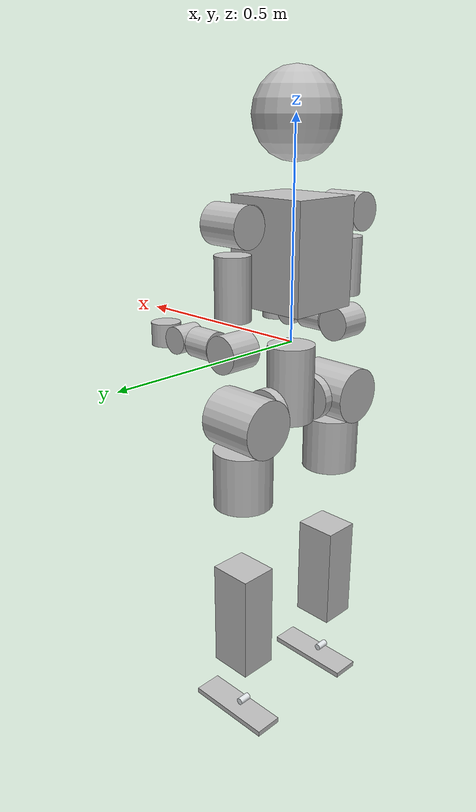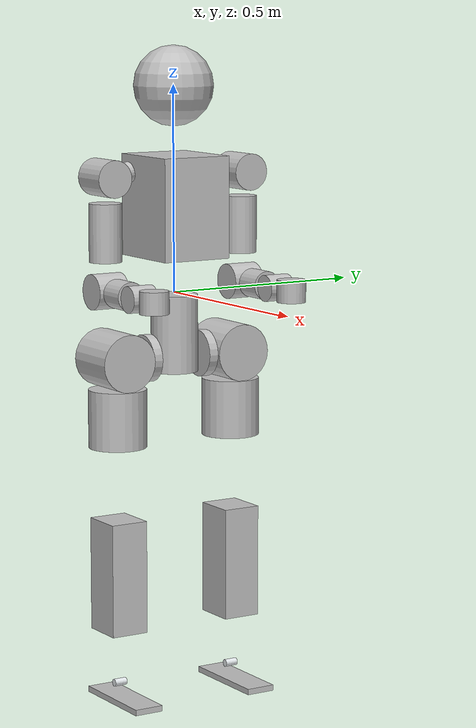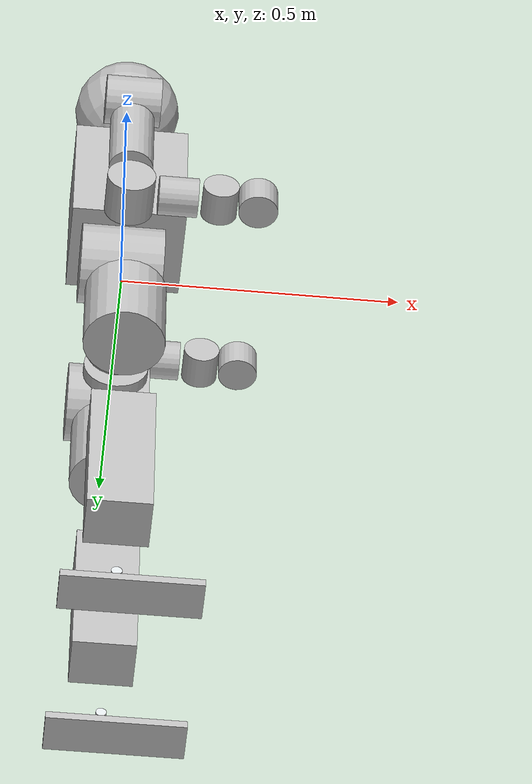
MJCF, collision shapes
<mujoco model="tsts2">
  <compiler angle="radian" meshdir="../meshes/"/>

  <asset>
    <mesh name="pelvis" file="pelvis.STL"/>
    <mesh name="left_hip_pitch_link" file="left_hip_pitch_link.STL"/>
    <mesh name="left_hip_roll_link" file="left_hip_roll_link.STL"/>
    <mesh name="left_hip_yaw_link" file="left_hip_yaw_link.STL"/>
    <mesh name="left_knee_link" file="left_knee_link.STL"/>
    <mesh name="left_ankle_pitch_link" file="left_ankle_pitch_link.STL"/>
    <mesh name="left_ankle_roll_link" file="left_ankle_roll_link.STL"/>
    <mesh name="right_hip_pitch_link" file="right_hip_pitch_link.STL"/>
    <mesh name="right_hip_roll_link" file="right_hip_roll_link.STL"/>
    <mesh name="right_hip_yaw_link" file="right_hip_yaw_link.STL"/>
    <mesh name="right_knee_link" file="right_knee_link.STL"/>
    <mesh name="right_ankle_pitch_link" file="right_ankle_pitch_link.STL"/>
    <mesh name="right_ankle_roll_link" file="right_ankle_roll_link.STL"/>
    <mesh name="torso_link" file="torso_link.STL"/>
    <mesh name="head_link" file="head_link.STL"/>
    <mesh name="left_shoulder_pitch_link" file="left_shoulder_pitch_link.STL"/>
    <mesh name="left_shoulder_roll_link" file="left_shoulder_roll_link.STL"/>
    <mesh name="left_shoulder_yaw_link" file="left_shoulder_yaw_link.STL"/>
    <mesh name="left_elbow_link" file="left_elbow_link.STL"/>
    <mesh name="left_wrist_yaw_link" file="left_wrist_yaw_link.STL"/>
    <mesh name="left_wrist_pitch_link" file="left_wrist_pitch_link.STL"/>
    <mesh name="left_wrist_roll_link" file="left_wrist_roll_link.STL"/>
    <mesh name="right_shoulder_pitch_link" file="right_shoulder_pitch_link.STL"/>
    <mesh name="right_shoulder_roll_link" file="right_shoulder_roll_link.STL"/>
    <mesh name="right_shoulder_yaw_link" file="right_shoulder_yaw_link.STL"/>
    <mesh name="right_elbow_link" file="right_elbow_link.STL"/>
    <mesh name="right_wrist_yaw_link" file="right_wrist_yaw_link.STL"/>
    <mesh name="right_wrist_pitch_link" file="right_wrist_pitch_link.STL"/>
    <mesh name="right_wrist_roll_link" file="right_wrist_roll_link.STL"/>
  </asset>

  <worldbody>
    <geom type="mesh" contype="0" conaffinity="0" group="1" density="0" rgba="0.752941 0.752941 0.752941 1" mesh="pelvis"/>
    <geom size="0.0572 0.09415" pos="0 0 -0.1" type="cylinder" rgba="0.752941 0.752941 0.752941 1"/>
    <body name="left_hip_pitch_link" pos="0 0.068 -0.156">
      <inertial pos="-0.0201683 0.0822161 0" quat="0.704101 0.704101 0.0651255 0.0651255" mass="2.42773" diaginertia="0.00623422 0.00516186 0.00352913"/>
      <joint name="left_hip_pitch_joint" pos="0 0 0" axis="0 1 0" range="-2.617 2.617" actuatorfrcrange="-300 300"/>
      <geom type="mesh" contype="0" conaffinity="0" group="1" density="0" rgba="0.752941 0.752941 0.752941 1" mesh="left_hip_pitch_link"/>
      <geom size="0.0575 0.0117" pos="0 0.01 0" quat="0.707388 0.706825 0 0" type="cylinder" rgba="0.752941 0.752941 0.752941 1"/>
      <body name="left_hip_roll_link" pos="0 0.092 0">
        <inertial pos="-0.00231162 -0.00036364 -0.081422" quat="0.986446 -0.0128273 0.163575 0.00198067" mass="3.15516" diaginertia="0.0127869 0.0114832 0.00651926"/>
        <joint name="left_hip_roll_joint" pos="0 0 0" axis="1 0 0" range="-0.25 2.8" actuatorfrcrange="-300 300"/>
        <geom type="mesh" contype="0" conaffinity="0" group="1" density="0" rgba="0.752941 0.752941 0.752941 1" mesh="left_hip_roll_link"/>
        <geom size="0.07 0.072" pos="-0.01 0 0" quat="0.707388 0 0.706825 0" type="cylinder" rgba="0.752941 0.752941 0.752941 1"/>
        <body name="left_hip_yaw_link" pos="0 0 -0.1395">
          <inertial pos="0.00642805 -0.00358464 -0.184496" quat="0.693667 -0.00118225 0.0183074 0.720062" mass="3.35223" diaginertia="0.0396254 0.0381203 0.0071533"/>
          <joint name="left_hip_yaw_joint" pos="0 0 0" axis="0 0 1" range="-1.2 2.6" actuatorfrcrange="-300 300"/>
          <geom type="mesh" contype="0" conaffinity="0" group="1" density="0" rgba="0.752941 0.752941 0.752941 1" mesh="left_hip_yaw_link"/>
          <geom size="0.0708 0.071" type="cylinder" rgba="0.752941 0.752941 0.752941 1"/>
          <body name="left_knee_link" pos="0 0 -0.26">
            <inertial pos="0.00978041 -0.00121598 -0.110007" quat="0.690926 0.000275879 -0.0112168 0.722838" mass="5.38282" diaginertia="0.0720794 0.0710269 0.00814125"/>
            <joint name="left_knee_joint" pos="0 0 0" axis="0 1 0" range="0 2.27" actuatorfrcrange="-300 300"/>
            <geom type="mesh" contype="0" conaffinity="0" group="1" density="0" rgba="0.752941 0.752941 0.752941 1" mesh="left_knee_link"/>
            <geom size="0.0545 0.0475 0.139" pos="0 0 -0.13" type="box" rgba="0.752941 0.752941 0.752941 1"/>
            <body name="left_ankle_pitch_link" pos="0 0 -0.4">
              <inertial pos="-0.000310026 1.10617e-05 -0.0042516" quat="0.691176 0.691169 0.149264 -0.14927" mass="0.163759" diaginertia="5.58316e-05 5.50037e-05 2.3119e-05"/>
              <joint name="left_ankle_pitch_joint" pos="0 0 0" axis="0 1 0" range="-0.698 0.49" actuatorfrcrange="-200 200"/>
              <geom type="mesh" contype="0" conaffinity="0" group="1" density="0" rgba="0.898039 0.917647 0.929412 1" mesh="left_ankle_pitch_link"/>
              <geom size="0.009 0.016" quat="0.707388 0.706825 0 0" type="cylinder" rgba="0.898039 0.917647 0.929412 1"/>
              <body name="left_ankle_roll_link" pos="0 0 -0.01">
                <inertial pos="0.0178042 0 -0.022945" quat="0 0.734587 0 0.678514" mass="0.328402" diaginertia="0.00147826 0.00138491 0.000224893"/>
                <joint name="left_ankle_roll_joint" pos="0 0 0" axis="1 0 0" range="-0.785 0.785" actuatorfrcrange="-200 200"/>
                <geom type="mesh" contype="0" conaffinity="0" group="1" density="0" rgba="0.752941 0.752941 0.752941 1" mesh="left_ankle_roll_link"/>
                <geom size="0.1175 0.0365 0.00715" pos="0.025 0 -0.02585" type="box" rgba="0.752941 0.752941 0.752941 1"/>
              </body>
            </body>
          </body>
        </body>
      </body>
    </body>
    <body name="right_hip_pitch_link" pos="0 -0.068 -0.156">
      <inertial pos="-0.0201683 -0.0822161 0" quat="0.704101 0.704101 -0.0651255 -0.0651255" mass="2.42773" diaginertia="0.00623422 0.00516186 0.00352913"/>
      <joint name="right_hip_pitch_joint" pos="0 0 0" axis="0 1 0" range="-2.617 2.617" actuatorfrcrange="-300 300"/>
      <geom type="mesh" contype="0" conaffinity="0" group="1" density="0" rgba="0.752941 0.752941 0.752941 1" mesh="right_hip_pitch_link"/>
      <geom size="0.0575 0.0117" pos="0 -0.01 0" quat="0.707388 0.706825 0 0" type="cylinder" rgba="0.752941 0.752941 0.752941 1"/>
      <body name="right_hip_roll_link" pos="0 -0.092 0">
        <inertial pos="-0.00231164 0.000363676 -0.0814221" quat="0.986446 0.0128271 0.163575 -0.00197953" mass="3.15516" diaginertia="0.0127868 0.0114832 0.00651926"/>
        <joint name="right_hip_roll_joint" pos="0 0 0" axis="1 0 0" range="-2.8 0.25" actuatorfrcrange="-300 300"/>
        <geom type="mesh" contype="0" conaffinity="0" group="1" density="0" rgba="0.752941 0.752941 0.752941 1" mesh="right_hip_roll_link"/>
        <geom size="0.07 0.072" pos="-0.01 0 0" quat="0.707388 0 0.706825 0" type="cylinder" rgba="0.752941 0.752941 0.752941 1"/>
        <body name="right_hip_yaw_link" pos="0 0 -0.1395">
          <inertial pos="0.00642805 0.00358464 -0.184496" quat="0.720062 0.0183074 -0.00118225 0.693667" mass="3.35223" diaginertia="0.0396254 0.0381203 0.0071533"/>
          <joint name="right_hip_yaw_joint" pos="0 0 0" axis="0 0 1" range="-2.6 1.2" actuatorfrcrange="-300 300"/>
          <geom type="mesh" contype="0" conaffinity="0" group="1" density="0" rgba="0.752941 0.752941 0.752941 1" mesh="right_hip_yaw_link"/>
          <geom size="0.0708 0.071" type="cylinder" rgba="0.752941 0.752941 0.752941 1"/>
          <body name="right_knee_link" pos="0 0 -0.26">
            <inertial pos="0.00978041 0.00121598 -0.110007" quat="0.722838 -0.0112168 0.00027589 0.690926" mass="5.38282" diaginertia="0.0720794 0.0710269 0.00814125"/>
            <joint name="right_knee_joint" pos="0 0 0" axis="0 1 0" range="0 2.27" actuatorfrcrange="-300 300"/>
            <geom type="mesh" contype="0" conaffinity="0" group="1" density="0" rgba="0.752941 0.752941 0.752941 1" mesh="right_knee_link"/>
            <geom size="0.0545 0.0475 0.139" pos="0 0 -0.13" type="box" rgba="0.752941 0.752941 0.752941 1"/>
            <body name="right_ankle_pitch_link" pos="0 0 -0.4">
              <inertial pos="-0.000310026 1.10617e-05 -0.0042516" quat="0.691176 0.691169 0.149264 -0.14927" mass="0.163759" diaginertia="5.58316e-05 5.50037e-05 2.3119e-05"/>
              <joint name="right_ankle_pitch_joint" pos="0 0 0" axis="0 1 0" range="-0.698 0.49" actuatorfrcrange="-200 200"/>
              <geom type="mesh" contype="0" conaffinity="0" group="1" density="0" rgba="0.898039 0.917647 0.929412 1" mesh="right_ankle_pitch_link"/>
              <geom size="0.009 0.016" quat="0.707388 0.706825 0 0" type="cylinder" rgba="0.898039 0.917647 0.929412 1"/>
              <body name="right_ankle_roll_link" pos="0 0 -0.01">
                <inertial pos="0.0178042 0 -0.022945" quat="0 0.734587 0 0.678514" mass="0.328402" diaginertia="0.00147826 0.00138491 0.000224893"/>
                <joint name="right_ankle_roll_joint" pos="0 0 0" axis="1 0 0" range="-0.785 0.785" actuatorfrcrange="-200 200"/>
                <geom type="mesh" contype="0" conaffinity="0" group="1" density="0" rgba="0.752941 0.752941 0.752941 1" mesh="right_ankle_roll_link"/>
                <geom size="0.1175 0.0365 0.00715" pos="0.025 0 -0.02585" type="box" rgba="0.752941 0.752941 0.752941 1"/>
              </body>
            </body>
          </body>
        </body>
      </body>
    </body>
    <body name="torso_link">
      <inertial pos="-0.00236065 0.000282891 0.230745" quat="0.999201 -0.00501461 -0.0396159 0.00180688" mass="10.5632" diaginertia="0.137903 0.113318 0.065432"/>
      <joint name="torso_joint" pos="0 0 0" axis="0 0 1" range="-3 3" actuatorfrcrange="-300 300"/>
      <geom type="mesh" contype="0" conaffinity="0" group="1" density="0" rgba="0.752941 0.752941 0.752941 1" mesh="torso_link"/>
      <geom size="0.1025 0.089 0.123" pos="0.0065 0 0.21" type="box" rgba="0.752941 0.752941 0.752941 1"/>
      <body name="head_link" pos="0 0 0.3875">
        <inertial pos="0.00822738 -0.00019885 0.10712" quat="0.000538408 0.810193 6.94485e-05 0.586163" mass="1.02775" diaginertia="0.00225635 0.00191732 0.00163636"/>
        <joint name="head_joint" pos="0 0 0" axis="0 0 1" range="-1.3 1.3" actuatorfrcrange="-20 20"/>
        <geom type="mesh" contype="0" conaffinity="0" group="1" density="0" rgba="0.752941 0.752941 0.752941 1" mesh="head_link"/>
        <geom size="0.097" pos="0 0 0.11" rgba="0.752941 0.752941 0.752941 1"/>
      </body>
      <body name="left_shoulder_pitch_link" pos="0 0.12095 0.29712" quat="0.996195 -0.0871543 0 0">
        <inertial pos="-0.0254614 0.0534578 -5.75839e-07" quat="0.702171 0.702182 0.0833408 0.0833656" mass="0.173115" diaginertia="0.000197536 0.000152139 9.0815e-05"/>
        <joint name="left_shoulder_pitch_joint" pos="0 0 0" axis="0 1 0" range="-3 3" actuatorfrcrange="-100 100"/>
        <geom type="mesh" contype="0" conaffinity="0" group="1" density="0" rgba="0.752941 0.752941 0.752941 1" mesh="left_shoulder_pitch_link"/>
        <geom size="0.0244 0.009" pos="0 0.01 0" quat="0.707388 0.706825 0 0" type="cylinder" rgba="0.752941 0.752941 0.752941 1"/>
        <body name="left_shoulder_roll_link" pos="0 0.0695 0" quat="0.996195 0.0871543 0 0">
          <inertial pos="0.00112286 -4.52209e-05 -0.067975" quat="0.999793 0.00155022 -0.0201616 0.00208659" mass="0.364745" diaginertia="0.000924429 0.000788402 0.000365403"/>
          <joint name="left_shoulder_roll_joint" pos="0 0 0" axis="1 0 0" range="-0.12 2.3" actuatorfrcrange="-100 100"/>
          <geom type="mesh" contype="0" conaffinity="0" group="1" density="0" rgba="0.752941 0.752941 0.752941 1" mesh="left_shoulder_roll_link"/>
          <geom size="0.0447 0.05" quat="0.707388 0 0.706825 0" type="cylinder" rgba="0.752941 0.752941 0.752941 1"/>
          <body name="left_shoulder_yaw_link" pos="0 0 -0.13">
            <inertial pos="-0.00081064 -0.00072673 -0.105837" quat="0.693666 -0.00598888 0.000250759 0.720272" mass="1.12432" diaginertia="0.00391994 0.00383464 0.000723036"/>
            <joint name="left_shoulder_yaw_joint" pos="0 0 0" axis="0 0 1" range="-1.9 1.9" actuatorfrcrange="-100 100"/>
            <geom type="mesh" contype="0" conaffinity="0" group="1" density="0" rgba="0.752941 0.752941 0.752941 1" mesh="left_shoulder_yaw_link"/>
            <geom size="0.03968 0.07" type="cylinder" rgba="0.752941 0.752941 0.752941 1"/>
            <body name="left_elbow_link" pos="0 0 -0.14" quat="0.707388 0 -0.706825 0">
              <inertial pos="-0.00152308 -0.00155026 -0.0668646" quat="0.992371 -0.0434666 0.063854 0.0960856" mass="0.593099" diaginertia="0.000843319 0.0008126 0.000468311"/>
              <joint name="left_elbow_joint" pos="0 0 0" axis="0 1 0" range="-0.83 1.57" actuatorfrcrange="-100 100"/>
              <geom type="mesh" contype="0" conaffinity="0" group="1" density="0" rgba="0.752941 0.752941 0.752941 1" mesh="left_elbow_link"/>
              <geom size="0.043 0.0395" quat="0.707388 0.706825 0 0" type="cylinder" rgba="0.752941 0.752941 0.752941 1"/>
              <body name="left_wrist_yaw_link" pos="0 0 -0.0955">
                <inertial pos="0.00020795 -0.00477305 -0.0659639" quat="0.709413 -0.101584 -0.105057 0.689476" mass="0.36396" diaginertia="0.000192068 0.000133146 0.000131356"/>
                <joint name="left_wrist_yaw_joint" pos="0 0 0" axis="0 0 1" range="-2.3 2.3" actuatorfrcrange="-20 20"/>
                <geom type="mesh" contype="0" conaffinity="0" group="1" density="0" rgba="0.752941 0.752941 0.752941 1" mesh="left_wrist_yaw_link"/>
                <geom size="0.035 0.035" pos="0 0 0.01" type="cylinder" rgba="0.752941 0.752941 0.752941 1"/>
                <body name="left_wrist_pitch_link" pos="0 0 -0.0645">
                  <inertial pos="-0.00480941 -0.00060521 -0.0582503" quat="0.99617 -0.0667976 -0.0505555 -0.0250494" mass="0.471098" diaginertia="0.000388022 0.000316156 0.000229722"/>
                  <joint name="left_wrist_pitch_joint" pos="0 0 0" axis="0 1 0" range="-1.2 1.2" actuatorfrcrange="-20 20"/>
                  <geom type="mesh" contype="0" conaffinity="0" group="1" density="0" rgba="0.752941 0.752941 0.752941 1" mesh="left_wrist_pitch_link"/>
                  <geom size="0.032 0.032" quat="0.707388 0.706825 0 0" type="cylinder" rgba="0.752941 0.752941 0.752941 1"/>
                  <body name="left_wrist_roll_link" pos="0 0 -0.068">
                    <inertial pos="0.0191604 -1.17e-06 -0.023948" quat="0.683304 -0.181921 -0.181921 0.683304" mass="0.0380932" diaginertia="2.008e-05 1.90086e-05 7.00137e-06"/>
                    <joint name="left_wrist_roll_joint" pos="0 0 0" axis="1 0 0" range="-1.2 1.2" actuatorfrcrange="-20 20"/>
                    <geom type="mesh" contype="0" conaffinity="0" group="1" density="0" rgba="0.752941 0.752941 0.752941 1" mesh="left_wrist_roll_link"/>
                    <geom size="0.035 0.027" quat="0.707388 0 0.706825 0" type="cylinder" rgba="0.752941 0.752941 0.752941 1"/>
                  </body>
                </body>
              </body>
            </body>
          </body>
        </body>
      </body>
      <body name="right_shoulder_pitch_link" pos="0 -0.12095 0.29712" quat="0.996195 0.0871543 0 0">
        <inertial pos="-0.0254614 -0.0534578 6.93877e-07" quat="0.702166 0.702188 -0.0833419 -0.0833635" mass="0.173115" diaginertia="0.00019754 0.00015214 9.08183e-05"/>
        <joint name="right_shoulder_pitch_joint" pos="0 0 0" axis="0 1 0" range="-3 3" actuatorfrcrange="-100 100"/>
        <geom type="mesh" contype="0" conaffinity="0" group="1" density="0" rgba="0.752941 0.752941 0.752941 1" mesh="right_shoulder_pitch_link"/>
        <geom size="0.0244 0.009" pos="0 -0.01 0" quat="0.707388 0.706825 0 0" type="cylinder" rgba="0.752941 0.752941 0.752941 1"/>
        <body name="right_shoulder_roll_link" pos="0 -0.0695 0" quat="0.996195 -0.0871543 0 0">
          <inertial pos="0.00112483 5.05515e-05 -0.0679738" quat="0.999794 -0.0015408 -0.0201519 -0.00208832" mass="0.364802" diaginertia="0.00092448 0.000788455 0.000365414"/>
          <joint name="right_shoulder_roll_joint" pos="0 0 0" axis="1 0 0" range="-2.3 0.12" actuatorfrcrange="-100 100"/>
          <geom type="mesh" contype="0" conaffinity="0" group="1" density="0" rgba="0.752941 0.752941 0.752941 1" mesh="right_shoulder_roll_link"/>
          <geom size="0.0447 0.05" quat="0.707388 0 0.706825 0" type="cylinder" rgba="0.752941 0.752941 0.752941 1"/>
          <body name="right_shoulder_yaw_link" pos="0 0 -0.13">
            <inertial pos="-0.00081059 0.00072671 -0.105749" quat="0.720253 0.0003316 -0.00594525 0.693686" mass="1.12432" diaginertia="0.00391319 0.00382787 0.000723043"/>
            <joint name="right_shoulder_yaw_joint" pos="0 0 0" axis="0 0 1" range="-1.9 1.9" actuatorfrcrange="-100 100"/>
            <geom type="mesh" contype="0" conaffinity="0" group="1" density="0" rgba="0.752941 0.752941 0.752941 1" mesh="right_shoulder_yaw_link"/>
            <geom size="0.03968 0.07" type="cylinder" rgba="0.752941 0.752941 0.752941 1"/>
            <body name="right_elbow_link" pos="0 0 -0.14" quat="0.707388 0 -0.706825 0">
              <inertial pos="-0.00139017 0.0014914 -0.066865" quat="0.992139 0.0427742 0.0625601 -0.0995795" mass="0.593091" diaginertia="0.00084363 0.000812263 0.000468977"/>
              <joint name="right_elbow_joint" pos="0 0 0" axis="0 1 0" range="-0.83 1.57" actuatorfrcrange="-100 100"/>
              <geom type="mesh" contype="0" conaffinity="0" group="1" density="0" rgba="0.752941 0.752941 0.752941 1" mesh="right_elbow_link"/>
              <geom size="0.043 0.0395" quat="0.707388 0.706825 0 0" type="cylinder" rgba="0.752941 0.752941 0.752941 1"/>
              <body name="right_wrist_yaw_link" pos="0 0 -0.0955">
                <inertial pos="-0.00020795 0.00477305 -0.0659639" quat="0.709413 0.101584 0.105057 0.689476" mass="0.36396" diaginertia="0.000192068 0.000133146 0.000131356"/>
                <joint name="right_wrist_yaw_joint" pos="0 0 0" axis="0 0 1" range="-2.3 2.3" actuatorfrcrange="-20 20"/>
                <geom type="mesh" contype="0" conaffinity="0" group="1" density="0" rgba="0.752941 0.752941 0.752941 1" mesh="right_wrist_yaw_link"/>
                <geom size="0.035 0.035" pos="0 0 0.01" type="cylinder" rgba="0.752941 0.752941 0.752941 1"/>
                <body name="right_wrist_pitch_link" pos="0 0 -0.0645">
                  <inertial pos="-0.0048094 0.00036052 -0.058458" quat="0.996274 0.0735022 -0.0442922 0.00858283" mass="0.471098" diaginertia="0.000388936 0.000316854 0.00023094"/>
                  <joint name="right_wrist_pitch_joint" pos="0 0 0" axis="0 1 0" range="-1.2 1.2" actuatorfrcrange="-20 20"/>
                  <geom type="mesh" contype="0" conaffinity="0" group="1" density="0" rgba="0.752941 0.752941 0.752941 1" mesh="right_wrist_pitch_link"/>
                  <geom size="0.032 0.032" quat="0.707388 0.706825 0 0" type="cylinder" rgba="0.752941 0.752941 0.752941 1"/>
                  <body name="right_wrist_roll_link" pos="0 0 -0.068">
                    <inertial pos="0.0191604 -1.17e-06 -0.023948" quat="0.683304 -0.181921 -0.181921 0.683304" mass="0.0380932" diaginertia="2.008e-05 1.90086e-05 7.00137e-06"/>
                    <joint name="right_wrist_roll_joint" pos="0 0 0" axis="1 0 0" range="-1.2 1.2" actuatorfrcrange="-20 20"/>
                    <geom type="mesh" contype="0" conaffinity="0" group="1" density="0" rgba="0.752941 0.752941 0.752941 1" mesh="right_wrist_roll_link"/>
                    <geom size="0.035 0.027" quat="0.707388 0 0.706825 0" type="cylinder" rgba="0.752941 0.752941 0.752941 1"/>
                  </body>
                </body>
              </body>
            </body>
          </body>
        </body>
      </body>
    </body>
  </worldbody>
</mujoco>
